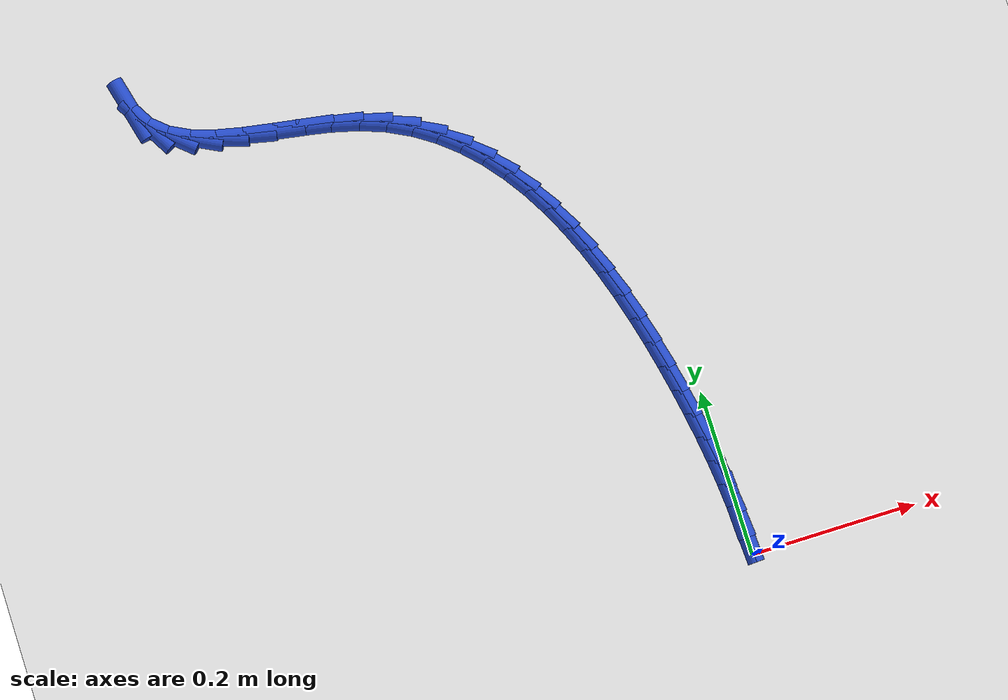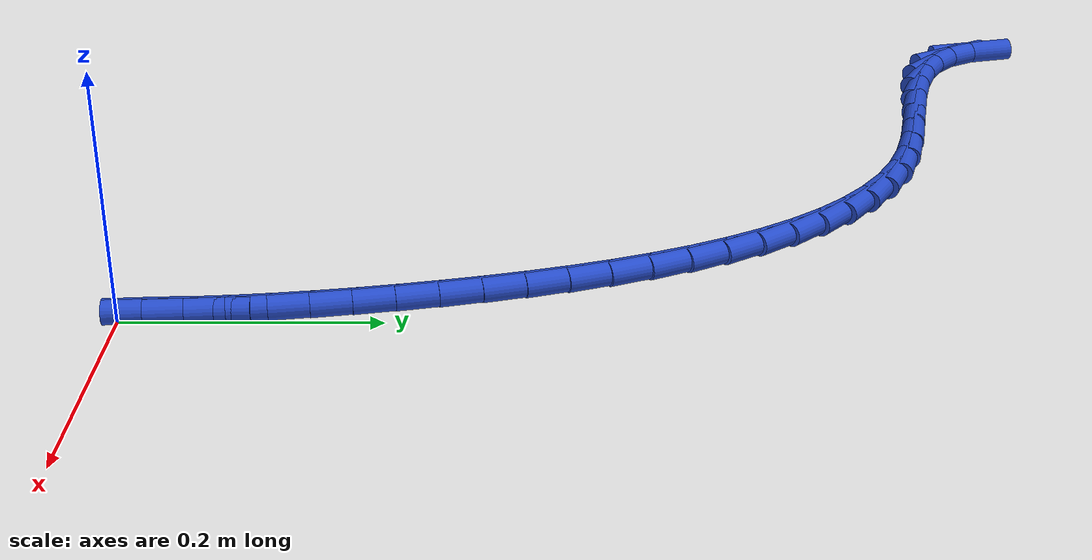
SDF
<sdf version="1.6">
 <world name="default">
  <model name="ground_plane">
   <static>1</static>
   <link name="link">
    <collision name="collision">
     <geometry><plane><normal>0 0 1</normal><size>100 100</size></plane></geometry>
     <surface><friction><ode><mu>100</mu><mu2>50</mu2></ode></friction></surface>
    </collision>
    <visual name="visual">
     <cast_shadows>0</cast_shadows>
     <geometry><plane><normal>0 0 1</normal><size>100 100</size></plane></geometry>
     <material>
      <script><uri>file://media/materials/scripts/gazebo.material</uri><name>Gazebo/WhiteGlow</name></script>
     </material>
    </visual>
   </link>
  </model>
  <model name="line">
   <link name="link_1">
    <pose>-0.0006711619609511116 0.030391498901429427 0.01 0 1.57 -1.5174680190827952</pose>
    <collision name="collision">
     <geometry><cylinder><radius>0.01</radius><length>0.08</length></cylinder></geometry>
    </collision>
    <visual name="visual">
     <material>
      <script><name>Gazebo/Blue</name><uri>file://media/materials/scripts/gazebo.material</uri></script>
     </material>
     <geometry><cylinder><radius>0.01</radius><length>0.08</length></cylinder></geometry>
    </visual>
   </link>
   <link name="link_2">
    <pose>-0.0022849066805259036 0.06062337232669993 0.01 0 1.57 -1.4873679906136286</pose>
    <collision name="collision">
     <geometry><cylinder><radius>0.01</radius><length>0.08</length></cylinder></geometry>
    </collision>
    <visual name="visual">
     <material>
      <script><name>Gazebo/Blue</name><uri>file://media/materials/scripts/gazebo.material</uri></script>
     </material>
     <geometry><cylinder><radius>0.01</radius><length>0.08</length></cylinder></geometry>
    </visual>
   </link>
   <link name="link_3">
    <pose>-0.0048081248614214285 0.09079730926587781 0.01 0 1.57 -1.4587643486130544</pose>
    <collision name="collision">
     <geometry><cylinder><radius>0.01</radius><length>0.08</length></cylinder></geometry>
    </collision>
    <visual name="visual">
     <material>
      <script><name>Gazebo/Blue</name><uri>file://media/materials/scripts/gazebo.material</uri></script>
     </material>
     <geometry><cylinder><radius>0.01</radius><length>0.08</length></cylinder></geometry>
    </visual>
   </link>
   <link name="link_4">
    <pose>-0.008207707206334732 0.12101499870902929 0.01 0 1.57 -1.4319588433765889</pose>
    <collision name="collision">
     <geometry><cylinder><radius>0.01</radius><length>0.08</length></cylinder></geometry>
    </collision>
    <visual name="visual">
     <material>
      <script><name>Gazebo/Blue</name><uri>file://media/materials/scripts/gazebo.material</uri></script>
     </material>
     <geometry><cylinder><radius>0.01</radius><length>0.08</length></cylinder></geometry>
    </visual>
   </link>
   <link name="link_5">
    <pose>-0.012450544417962858 0.1513781296462207 0.01 0 1.57 -1.4071968913392146</pose>
    <collision name="collision">
     <geometry><cylinder><radius>0.01</radius><length>0.08</length></cylinder></geometry>
    </collision>
    <visual name="visual">
     <material>
      <script><name>Gazebo/Blue</name><uri>file://media/materials/scripts/gazebo.material</uri></script>
     </material>
     <geometry><cylinder><radius>0.01</radius><length>0.08</length></cylinder></geometry>
    </visual>
   </link>
   <link name="link_6">
    <pose>-0.01750352719900286 0.18198839106751827 0.01 0 1.57 -1.3846624284830191</pose>
    <collision name="collision">
     <geometry><cylinder><radius>0.01</radius><length>0.08</length></cylinder></geometry>
    </collision>
    <visual name="visual">
     <material>
      <script><name>Gazebo/Blue</name><uri>file://media/materials/scripts/gazebo.material</uri></script>
     </material>
     <geometry><cylinder><radius>0.01</radius><length>0.08</length></cylinder></geometry>
    </visual>
   </link>
   <link name="link_7">
    <pose>-0.02333354625215177 0.21294747196298824 0.01 0 1.57 -1.3643820310408041</pose>
    <collision name="collision">
     <geometry><cylinder><radius>0.01</radius><length>0.08</length></cylinder></geometry>
    </collision>
    <visual name="visual">
     <material>
      <script><name>Gazebo/Blue</name><uri>file://media/materials/scripts/gazebo.material</uri></script>
     </material>
     <geometry><cylinder><radius>0.01</radius><length>0.08</length></cylinder></geometry>
    </visual>
   </link>
   <link name="link_8">
    <pose>-0.02990960083578653 0.24435224060416774 0.01 0 1.57 -1.34336765029454</pose>
    <collision name="collision">
     <geometry><cylinder><radius>0.01</radius><length>0.08</length></cylinder></geometry>
    </collision>
    <visual name="visual">
     <material>
      <script><name>Gazebo/Blue</name><uri>file://media/materials/scripts/gazebo.material</uri></script>
     </material>
     <geometry><cylinder><radius>0.01</radius><length>0.08</length></cylinder></geometry>
    </visual>
   </link>
   <link name="link_9">
    <pose>-0.03726776562247872 0.27614621304375275 0.01 0 1.57 -1.317895623288179</pose>
    <collision name="collision">
     <geometry><cylinder><radius>0.01</radius><length>0.08</length></cylinder></geometry>
    </collision>
    <visual name="visual">
     <material>
      <script><name>Gazebo/Blue</name><uri>file://media/materials/scripts/gazebo.material</uri></script>
     </material>
     <geometry><cylinder><radius>0.01</radius><length>0.08</length></cylinder></geometry>
    </visual>
   </link>
   <link name="link_10">
    <pose>-0.04552349521653706 0.30809142171917586 0.01 0 1.57 -1.2874552609864258</pose>
    <collision name="collision">
     <geometry><cylinder><radius>0.01</radius><length>0.08</length></cylinder></geometry>
    </collision>
    <visual name="visual">
     <material>
      <script><name>Gazebo/Blue</name><uri>file://media/materials/scripts/gazebo.material</uri></script>
     </material>
     <geometry><cylinder><radius>0.01</radius><length>0.08</length></cylinder></geometry>
    </visual>
   </link>
   <link name="link_11">
    <pose>-0.054796835586308545 0.339939401989749 0.01 0 1.57 -1.251612497408351</pose>
    <collision name="collision">
     <geometry><cylinder><radius>0.01</radius><length>0.08</length></cylinder></geometry>
    </collision>
    <visual name="visual">
     <material>
      <script><name>Gazebo/Blue</name><uri>file://media/materials/scripts/gazebo.material</uri></script>
     </material>
     <geometry><cylinder><radius>0.01</radius><length>0.08</length></cylinder></geometry>
    </visual>
   </link>
   <link name="link_12">
    <pose>-0.06520783270014013 0.37144168921478404 0.01 0 1.57 -1.209810733027695</pose>
    <collision name="collision">
     <geometry><cylinder><radius>0.01</radius><length>0.08</length></cylinder></geometry>
    </collision>
    <visual name="visual">
     <material>
      <script><name>Gazebo/Blue</name><uri>file://media/materials/scripts/gazebo.material</uri></script>
     </material>
     <geometry><cylinder><radius>0.01</radius><length>0.08</length></cylinder></geometry>
    </visual>
   </link>
   <link name="link_13">
    <pose>-0.07687653252637883 0.4023498187535929 0.01 0 1.57 -1.1613828268277069</pose>
    <collision name="collision">
     <geometry><cylinder><radius>0.01</radius><length>0.08</length></cylinder></geometry>
    </collision>
    <visual name="visual">
     <material>
      <script><name>Gazebo/Blue</name><uri>file://media/materials/scripts/gazebo.material</uri></script>
     </material>
     <geometry><cylinder><radius>0.01</radius><length>0.08</length></cylinder></geometry>
    </visual>
   </link>
   <link name="link_14">
    <pose>-0.08992298103337162 0.4324153259654876 0.01 0 1.57 -1.1055752439118254</pose>
    <collision name="collision">
     <geometry><cylinder><radius>0.01</radius><length>0.08</length></cylinder></geometry>
    </collision>
    <visual name="visual">
     <material>
      <script><name>Gazebo/Blue</name><uri>file://media/materials/scripts/gazebo.material</uri></script>
     </material>
     <geometry><cylinder><radius>0.01</radius><length>0.08</length></cylinder></geometry>
    </visual>
   </link>
   <link name="link_15">
    <pose>-0.10446722418946548 0.46138974620977985 0.01 0 1.57 -1.0415955799346688</pose>
    <collision name="collision">
     <geometry><cylinder><radius>0.01</radius><length>0.08</length></cylinder></geometry>
    </collision>
    <visual name="visual">
     <material>
      <script><name>Gazebo/Blue</name><uri>file://media/materials/scripts/gazebo.material</uri></script>
     </material>
     <geometry><cylinder><radius>0.01</radius><length>0.08</length></cylinder></geometry>
    </visual>
   </link>
   <link name="link_16">
    <pose>-0.12062930796300736 0.4890246148457817 0.01 0 1.57 -0.9686977700942155</pose>
    <collision name="collision">
     <geometry><cylinder><radius>0.01</radius><length>0.08</length></cylinder></geometry>
    </collision>
    <visual name="visual">
     <material>
      <script><name>Gazebo/Blue</name><uri>file://media/materials/scripts/gazebo.material</uri></script>
     </material>
     <geometry><cylinder><radius>0.01</radius><length>0.08</length></cylinder></geometry>
    </visual>
   </link>
   <link name="link_17">
    <pose>-0.13852927832234432 0.515071467232805 0.01 0 1.57 -0.8863196126066907</pose>
    <collision name="collision">
     <geometry><cylinder><radius>0.01</radius><length>0.08</length></cylinder></geometry>
    </collision>
    <visual name="visual">
     <material>
      <script><name>Gazebo/Blue</name><uri>file://media/materials/scripts/gazebo.material</uri></script>
     </material>
     <geometry><cylinder><radius>0.01</radius><length>0.08</length></cylinder></geometry>
    </visual>
   </link>
   <link name="link_18">
    <pose>-0.15828718123582322 0.5392818387301614 0.01 0 1.57 -0.7942792094157315</pose>
    <collision name="collision">
     <geometry><cylinder><radius>0.01</radius><length>0.08</length></cylinder></geometry>
    </collision>
    <visual name="visual">
     <material>
      <script><name>Gazebo/Blue</name><uri>file://media/materials/scripts/gazebo.material</uri></script>
     </material>
     <geometry><cylinder><radius>0.01</radius><length>0.08</length></cylinder></geometry>
    </visual>
   </link>
   <link name="link_19">
    <pose>-0.18002306267179125 0.5614072646971636 0.01 0 1.57 -0.6930130803756717</pose>
    <collision name="collision">
     <geometry><cylinder><radius>0.01</radius><length>0.08</length></cylinder></geometry>
    </collision>
    <visual name="visual">
     <material>
      <script><name>Gazebo/Blue</name><uri>file://media/materials/scripts/gazebo.material</uri></script>
     </material>
     <geometry><cylinder><radius>0.01</radius><length>0.08</length></cylinder></geometry>
    </visual>
   </link>
   <link name="link_20">
    <pose>-0.20385696859859517 0.5811992804931227 0.01 0 1.57 -0.5837963238916771</pose>
    <collision name="collision">
     <geometry><cylinder><radius>0.01</radius><length>0.08</length></cylinder></geometry>
    </collision>
    <visual name="visual">
     <material>
      <script><name>Gazebo/Blue</name><uri>file://media/materials/scripts/gazebo.material</uri></script>
     </material>
     <geometry><cylinder><radius>0.01</radius><length>0.08</length></cylinder></geometry>
    </visual>
   </link>
   <link name="link_21">
    <pose>-0.22990894498458214 0.598409421477351 0.01 0 1.57 -0.4688402312000771</pose>
    <collision name="collision">
     <geometry><cylinder><radius>0.01</radius><length>0.08</length></cylinder></geometry>
    </collision>
    <visual name="visual">
     <material>
      <script><name>Gazebo/Blue</name><uri>file://media/materials/scripts/gazebo.material</uri></script>
     </material>
     <geometry><cylinder><radius>0.01</radius><length>0.08</length></cylinder></geometry>
    </visual>
   </link>
   <link name="link_22">
    <pose>-0.2582990377980991 0.6127892230091604 0.01 0 1.57 -0.35122392846613315</pose>
    <collision name="collision">
     <geometry><cylinder><radius>0.01</radius><length>0.08</length></cylinder></geometry>
    </collision>
    <visual name="visual">
     <material>
      <script><name>Gazebo/Blue</name><uri>file://media/materials/scripts/gazebo.material</uri></script>
     </material>
     <geometry><cylinder><radius>0.01</radius><length>0.08</length></cylinder></geometry>
    </visual>
   </link>
   <link name="link_23">
    <pose>-0.28914573059034954 0.6240919487211962 0.01 0 1.57 -0.24725509992650535</pose>
    <collision name="collision">
     <geometry><cylinder><radius>0.01</radius><length>0.08</length></cylinder></geometry>
    </collision>
    <visual name="visual">
     <material>
      <script><name>Gazebo/Blue</name><uri>file://media/materials/scripts/gazebo.material</uri></script>
     </material>
     <geometry><cylinder><radius>0.01</radius><length>0.08</length></cylinder></geometry>
    </visual>
   </link>
   <link name="link_24">
    <pose>-0.32223081965496275 0.6324432900651165 0.01 0 1.57 -0.18306010486583105</pose>
    <collision name="collision">
     <geometry><cylinder><radius>0.01</radius><length>0.08</length></cylinder></geometry>
    </collision>
    <visual name="visual">
     <material>
      <script><name>Gazebo/Blue</name><uri>file://media/materials/scripts/gazebo.material</uri></script>
     </material>
     <geometry><cylinder><radius>0.01</radius><length>0.08</length></cylinder></geometry>
    </visual>
   </link>
   <link name="link_25">
    <pose>-0.35658221090065695 0.6388028570490718 0.01 0 1.57 -0.15622098834988132</pose>
    <collision name="collision">
     <geometry><cylinder><radius>0.01</radius><length>0.08</length></cylinder></geometry>
    </collision>
    <visual name="visual">
     <material>
      <script><name>Gazebo/Blue</name><uri>file://media/materials/scripts/gazebo.material</uri></script>
     </material>
     <geometry><cylinder><radius>0.01</radius><length>0.08</length></cylinder></geometry>
    </visual>
   </link>
   <link name="link_26">
    <pose>-0.3911253846828628 0.6442435580747926 0.01 0 1.57 -0.16470554279743305</pose>
    <collision name="collision">
     <geometry><cylinder><radius>0.01</radius><length>0.08</length></cylinder></geometry>
    </collision>
    <visual name="visual">
     <material>
      <script><name>Gazebo/Blue</name><uri>file://media/materials/scripts/gazebo.material</uri></script>
     </material>
     <geometry><cylinder><radius>0.01</radius><length>0.08</length></cylinder></geometry>
    </visual>
   </link>
   <link name="link_27">
    <pose>-0.4247858213570115 0.6498383015440096 0.01 0 1.57 -0.21194229378995613</pose>
    <collision name="collision">
     <geometry><cylinder><radius>0.01</radius><length>0.08</length></cylinder></geometry>
    </collision>
    <visual name="visual">
     <material>
      <script><name>Gazebo/Blue</name><uri>file://media/materials/scripts/gazebo.material</uri></script>
     </material>
     <geometry><cylinder><radius>0.01</radius><length>0.08</length></cylinder></geometry>
    </visual>
   </link>
   <link name="link_28">
    <pose>-0.4564890012785339 0.6566599958584531 0.01 0 1.57 -0.3080158597506141</pose>
    <collision name="collision">
     <geometry><cylinder><radius>0.01</radius><length>0.08</length></cylinder></geometry>
    </collision>
    <visual name="visual">
     <material>
      <script><name>Gazebo/Blue</name><uri>file://media/materials/scripts/gazebo.material</uri></script>
     </material>
     <geometry><cylinder><radius>0.01</radius><length>0.08</length></cylinder></geometry>
    </visual>
   </link>
   <link name="link_29">
    <pose>-0.4851604048028605 0.6657815494198535 0.01 0 1.57 -0.4705203304105009</pose>
    <collision name="collision">
     <geometry><cylinder><radius>0.01</radius><length>0.08</length></cylinder></geometry>
    </collision>
    <visual name="visual">
     <material>
      <script><name>Gazebo/Blue</name><uri>file://media/materials/scripts/gazebo.material</uri></script>
     </material>
     <geometry><cylinder><radius>0.01</radius><length>0.08</length></cylinder></geometry>
    </visual>
   </link>
   <link name="link_30">
    <pose>-0.5097255122854228 0.6782758706299414 0.01 0 1.57 -0.7182085423369431</pose>
    <collision name="collision">
     <geometry><cylinder><radius>0.01</radius><length>0.08</length></cylinder></geometry>
    </collision>
    <visual name="visual">
     <material>
      <script><name>Gazebo/Blue</name><uri>file://media/materials/scripts/gazebo.material</uri></script>
     </material>
     <geometry><cylinder><radius>0.01</radius><length>0.08</length></cylinder></geometry>
    </visual>
   </link>
   <link name="link_31">
    <pose>-0.5291098040816513 0.695215867890447 0.01 0 1.57 -1.039429248445565</pose>
    <collision name="collision">
     <geometry><cylinder><radius>0.01</radius><length>0.08</length></cylinder></geometry>
    </collision>
    <visual name="visual">
     <material>
      <script><name>Gazebo/Blue</name><uri>file://media/materials/scripts/gazebo.material</uri></script>
     </material>
     <geometry><cylinder><radius>0.01</radius><length>0.08</length></cylinder></geometry>
    </visual>
   </link>
   <link name="link_32">
    <pose>-0.5422837329436971 0.717629852527886 0.01 0 1.57 -1.3236414079525096</pose>
    <collision name="collision">
     <geometry><cylinder><radius>0.01</radius><length>0.08</length></cylinder></geometry>
    </collision>
    <visual name="visual">
     <material>
      <script><name>Gazebo/Blue</name><uri>file://media/materials/scripts/gazebo.material</uri></script>
     </material>
     <geometry><cylinder><radius>0.01</radius><length>0.08</length></cylinder></geometry>
    </visual>
   </link>
   <link name="link_271">
    <pose>-0.0006755982767695963 0.030356953997324475 0.01 0 1.57 -1.5160064133797928</pose>
    <collision name="collision">
     <geometry><cylinder><radius>0.01</radius><length>0.08</length></cylinder></geometry>
    </collision>
    <visual name="visual">
     <material>
      <script><name>Gazebo/Blue</name><uri>file://media/materials/scripts/gazebo.material</uri></script>
     </material>
     <geometry><cylinder><radius>0.01</radius><length>0.08</length></cylinder></geometry>
    </visual>
   </link>
   <link name="link_272">
    <pose>-0.0023203972070737072 0.06034701309385603 0.01 0 1.57 -1.5323643555327735</pose>
    <collision name="collision">
     <geometry><cylinder><radius>0.01</radius><length>0.08</length></cylinder></geometry>
    </collision>
    <visual name="visual">
     <material>
      <script><name>Gazebo/Blue</name><uri>file://media/materials/scripts/gazebo.material</uri></script>
     </material>
     <geometry><cylinder><radius>0.01</radius><length>0.08</length></cylinder></geometry>
    </visual>
   </link>
  </model>
 </world>
</sdf>
